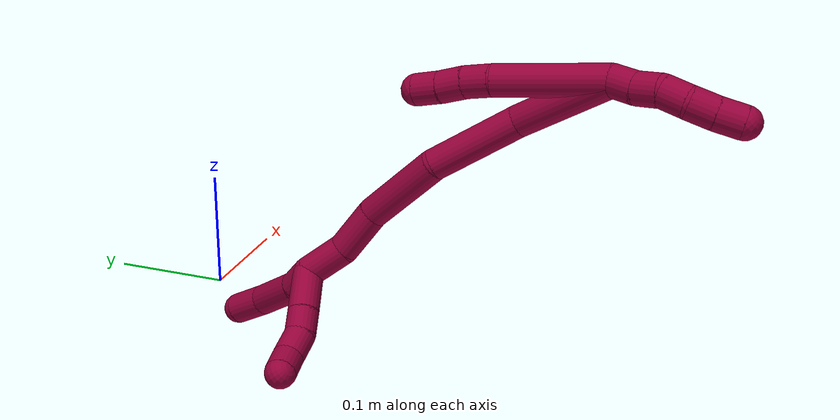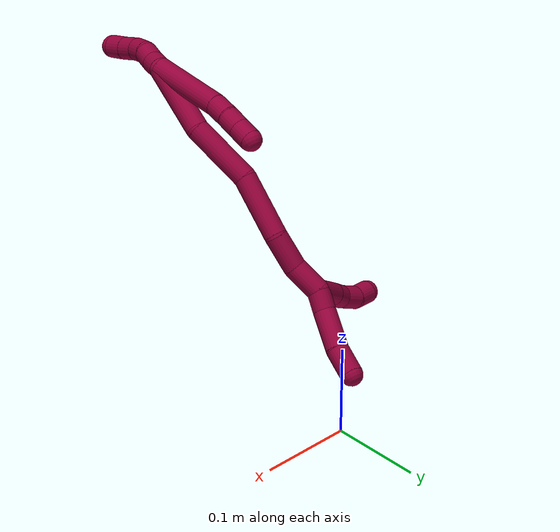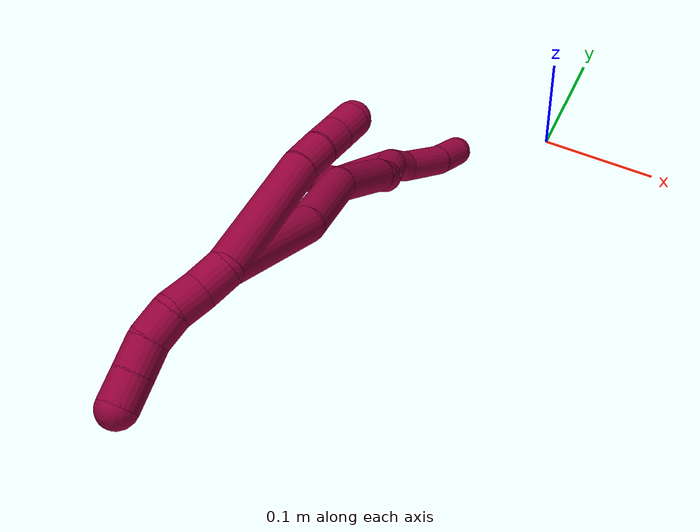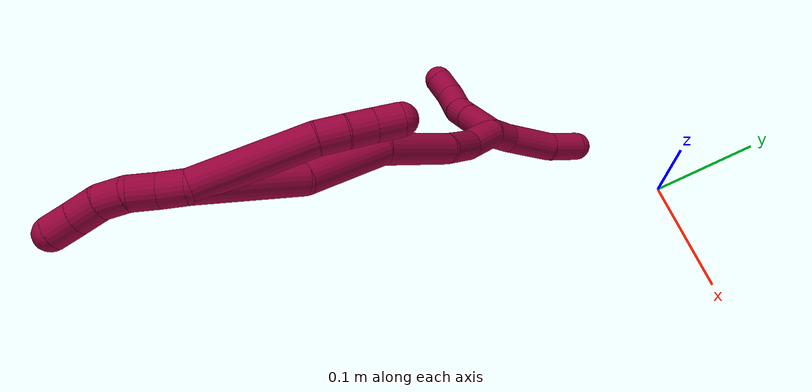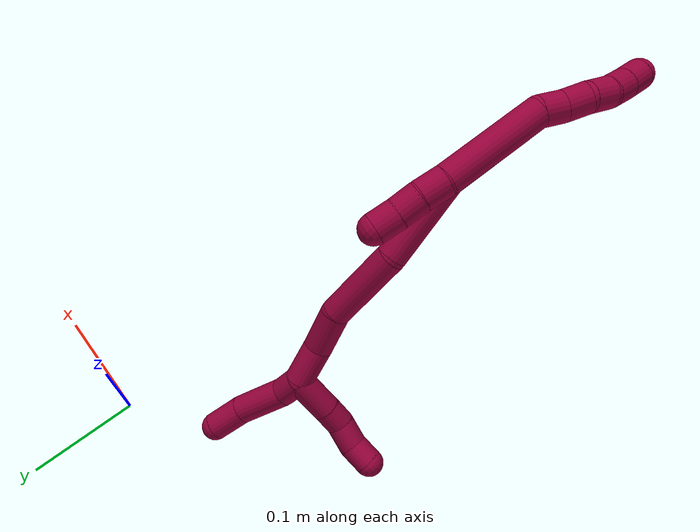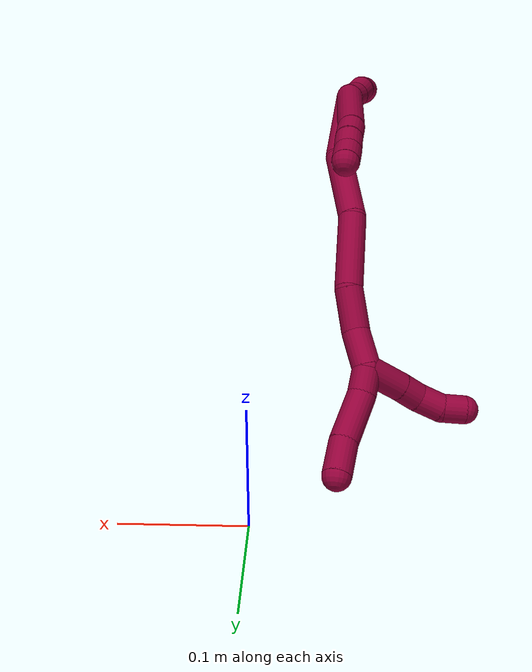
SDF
<sdf version="1.7">
 <world name="default">
  <model name="8">
   <static>0</static>
   <link name="8">
    <collision name="collision-cylinder-e_1_2_8">
     <pose>-0.007434 0.025243 -0.035139 -2.51863 -0.170163 0.517905</pose>
     <geometry><cylinder><radius>0.0125</radius><length>0.087801</length></cylinder></geometry>
     <surface>
      <friction><ode><mu>1.16</mu><mu2>1.16</mu2><slip1>0</slip1><slip2>0</slip2></ode></friction>
      <contact><ode><kp>1e+06</kp><kd>1</kd><max_vel>0</max_vel><min_depth>0.001</min_depth></ode></contact>
     </surface>
    </collision>
    <visual name="visual-cylinder-e_1_2_8">
     <pose>-0.007434 0.025243 -0.035139 -2.51863 -0.170163 0.517905</pose>
     <geometry><cylinder><radius>0.0125</radius><length>0.087801</length></cylinder></geometry>
     <material><ambient>0.584314 0 0.227451 1</ambient></material>
    </visual>
    <collision name="collision-cylinder-e_2_8_9">
     <pose>-0.015483 0.05597 -0.079528 -2.60653 -0.057079 0.207547</pose>
     <geometry><cylinder><radius>0.0125</radius><length>0.021541</length></cylinder></geometry>
     <surface>
      <friction><ode><mu>1.16</mu><mu2>1.16</mu2><slip1>0</slip1><slip2>0</slip2></ode></friction>
      <contact><ode><kp>1e+06</kp><kd>1</kd><max_vel>0</max_vel><min_depth>0.001</min_depth></ode></contact>
     </surface>
    </collision>
    <visual name="visual-cylinder-e_2_8_9">
     <pose>-0.015483 0.05597 -0.079528 -2.60653 -0.057079 0.207547</pose>
     <geometry><cylinder><radius>0.0125</radius><length>0.021541</length></cylinder></geometry>
     <material><ambient>0.584314 0 0.227451 1</ambient></material>
    </visual>
    <collision name="collision-cylinder-e_3_9_10">
     <pose>-0.017042 0.065572 -0.098036 -2.72296 -0.092978 0.431197</pose>
     <geometry><cylinder><radius>0.0125</radius><length>0.020354</length></cylinder></geometry>
     <surface>
      <friction><ode><mu>1.16</mu><mu2>1.16</mu2><slip1>0</slip1><slip2>0</slip2></ode></friction>
      <contact><ode><kp>1e+06</kp><kd>1</kd><max_vel>0</max_vel><min_depth>0.001</min_depth></ode></contact>
     </surface>
    </collision>
    <visual name="visual-cylinder-e_3_9_10">
     <pose>-0.017042 0.065572 -0.098036 -2.72296 -0.092978 0.431197</pose>
     <geometry><cylinder><radius>0.0125</radius><length>0.020354</length></cylinder></geometry>
     <material><ambient>0.584314 0 0.227451 1</ambient></material>
    </visual>
    <collision name="collision-cylinder-e_4_10_6">
     <pose>-0.018538 0.074506 -0.116214 -2.64666 -0.054287 0.214107</pose>
     <geometry><cylinder><radius>0.0125</radius><length>0.020305</length></cylinder></geometry>
     <surface>
      <friction><ode><mu>1.16</mu><mu2>1.16</mu2><slip1>0</slip1><slip2>0</slip2></ode></friction>
      <contact><ode><kp>1e+06</kp><kd>1</kd><max_vel>0</max_vel><min_depth>0.001</min_depth></ode></contact>
     </surface>
    </collision>
    <visual name="visual-cylinder-e_4_10_6">
     <pose>-0.018538 0.074506 -0.116214 -2.64666 -0.054287 0.214107</pose>
     <geometry><cylinder><radius>0.0125</radius><length>0.020305</length></cylinder></geometry>
     <material><ambient>0.584314 0 0.227451 1</ambient></material>
    </visual>
    <collision name="collision-cylinder-e_1_2_11">
     <pose>-0.001581 -0.007332 0.006614 0.836874 -0.158742 -0.070712</pose>
     <geometry><cylinder><radius>0.0125</radius><length>0.02</length></cylinder></geometry>
     <surface>
      <friction><ode><mu>1.16</mu><mu2>1.16</mu2><slip1>0</slip1><slip2>0</slip2></ode></friction>
      <contact><ode><kp>1e+06</kp><kd>1</kd><max_vel>0</max_vel><min_depth>0.001</min_depth></ode></contact>
     </surface>
    </collision>
    <visual name="visual-cylinder-e_1_2_11">
     <pose>-0.001581 -0.007332 0.006614 0.836874 -0.158742 -0.070712</pose>
     <geometry><cylinder><radius>0.0125</radius><length>0.02</length></cylinder></geometry>
     <material><ambient>0.584314 0 0.227451 1</ambient></material>
    </visual>
    <collision name="collision-cylinder-e_2_11_12">
     <pose>-0.004481 -0.02061 0.021159 0.643211 -0.132332 -0.044146</pose>
     <geometry><cylinder><radius>0.0125</radius><length>0.02</length></cylinder></geometry>
     <surface>
      <friction><ode><mu>1.16</mu><mu2>1.16</mu2><slip1>0</slip1><slip2>0</slip2></ode></friction>
      <contact><ode><kp>1e+06</kp><kd>1</kd><max_vel>0</max_vel><min_depth>0.001</min_depth></ode></contact>
     </surface>
    </collision>
    <visual name="visual-cylinder-e_2_11_12">
     <pose>-0.004481 -0.02061 0.021159 0.643211 -0.132332 -0.044146</pose>
     <geometry><cylinder><radius>0.0125</radius><length>0.02</length></cylinder></geometry>
     <material><ambient>0.584314 0 0.227451 1</ambient></material>
    </visual>
    <collision name="collision-cylinder-e_3_12_13">
     <pose>-0.00618 -0.034833 0.034687 0.976358 -0.037996 -0.02018</pose>
     <geometry><cylinder><radius>0.0125</radius><length>0.02</length></cylinder></geometry>
     <surface>
      <friction><ode><mu>1.16</mu><mu2>1.16</mu2><slip1>0</slip1><slip2>0</slip2></ode></friction>
      <contact><ode><kp>1e+06</kp><kd>1</kd><max_vel>0</max_vel><min_depth>0.001</min_depth></ode></contact>
     </surface>
    </collision>
    <visual name="visual-cylinder-e_3_12_13">
     <pose>-0.00618 -0.034833 0.034687 0.976358 -0.037996 -0.02018</pose>
     <geometry><cylinder><radius>0.0125</radius><length>0.02</length></cylinder></geometry>
     <material><ambient>0.584314 0 0.227451 1</ambient></material>
    </visual>
    <collision name="collision-cylinder-e_4_13_14">
     <pose>-0.004471 -0.051557 0.045215 1.04223 0.210501 0.121137</pose>
     <geometry><cylinder><radius>0.0125</radius><length>0.02</length></cylinder></geometry>
     <surface>
      <friction><ode><mu>1.16</mu><mu2>1.16</mu2><slip1>0</slip1><slip2>0</slip2></ode></friction>
      <contact><ode><kp>1e+06</kp><kd>1</kd><max_vel>0</max_vel><min_depth>0.001</min_depth></ode></contact>
     </surface>
    </collision>
    <visual name="visual-cylinder-e_4_13_14">
     <pose>-0.004471 -0.051557 0.045215 1.04223 0.210501 0.121137</pose>
     <geometry><cylinder><radius>0.0125</radius><length>0.02</length></cylinder></geometry>
     <material><ambient>0.584314 0 0.227451 1</ambient></material>
    </visual>
    <collision name="collision-cylinder-e_5_14_5">
     <pose>-2.8e-05 -0.068053 0.055591 0.976256 0.237544 0.12656</pose>
     <geometry><cylinder><radius>0.0125</radius><length>0.02</length></cylinder></geometry>
     <surface>
      <friction><ode><mu>1.16</mu><mu2>1.16</mu2><slip1>0</slip1><slip2>0</slip2></ode></friction>
      <contact><ode><kp>1e+06</kp><kd>1</kd><max_vel>0</max_vel><min_depth>0.001</min_depth></ode></contact>
     </surface>
    </collision>
    <visual name="visual-cylinder-e_5_14_5">
     <pose>-2.8e-05 -0.068053 0.055591 0.976256 0.237544 0.12656</pose>
     <geometry><cylinder><radius>0.0125</radius><length>0.02</length></cylinder></geometry>
     <material><ambient>0.584314 0 0.227451 1</ambient></material>
    </visual>
    <collision name="collision-cylinder-e_1_2_15">
     <pose>-0.000126 0.008098 -0.040116 -2.94242 -0.003074 0.030765</pose>
     <geometry><cylinder><radius>0.0125</radius><length>0.081851</length></cylinder></geometry>
     <surface>
      <friction><ode><mu>1.16</mu><mu2>1.16</mu2><slip1>0</slip1><slip2>0</slip2></ode></friction>
      <contact><ode><kp>1e+06</kp><kd>1</kd><max_vel>0</max_vel><min_depth>0.001</min_depth></ode></contact>
     </surface>
    </collision>
    <visual name="visual-cylinder-e_1_2_15">
     <pose>-0.000126 0.008098 -0.040116 -2.94242 -0.003074 0.030765</pose>
     <geometry><cylinder><radius>0.0125</radius><length>0.081851</length></cylinder></geometry>
     <material><ambient>0.584314 0 0.227451 1</ambient></material>
    </visual>
    <collision name="collision-cylinder-e_2_15_16">
     <pose>-0.010698 0.021321 -0.114954 -2.99504 -0.289295 2.20798</pose>
     <geometry><cylinder><radius>0.0125</radius><length>0.07324</length></cylinder></geometry>
     <surface>
      <friction><ode><mu>1.16</mu><mu2>1.16</mu2><slip1>0</slip1><slip2>0</slip2></ode></friction>
      <contact><ode><kp>1e+06</kp><kd>1</kd><max_vel>0</max_vel><min_depth>0.001</min_depth></ode></contact>
     </surface>
    </collision>
    <visual name="visual-cylinder-e_2_15_16">
     <pose>-0.010698 0.021321 -0.114954 -2.99504 -0.289295 2.20798</pose>
     <geometry><cylinder><radius>0.0125</radius><length>0.07324</length></cylinder></geometry>
     <material><ambient>0.584314 0 0.227451 1</ambient></material>
    </visual>
    <collision name="collision-cylinder-e_3_16_17">
     <pose>-0.023064 0.0255 -0.184658 3.11455 -0.054781 -2.2246</pose>
     <geometry><cylinder><radius>0.0125</radius><length>0.070094</length></cylinder></geometry>
     <surface>
      <friction><ode><mu>1.16</mu><mu2>1.16</mu2><slip1>0</slip1><slip2>0</slip2></ode></friction>
      <contact><ode><kp>1e+06</kp><kd>1</kd><max_vel>0</max_vel><min_depth>0.001</min_depth></ode></contact>
     </surface>
    </collision>
    <visual name="visual-cylinder-e_3_16_17">
     <pose>-0.023064 0.0255 -0.184658 3.11455 -0.054781 -2.2246</pose>
     <geometry><cylinder><radius>0.0125</radius><length>0.070094</length></cylinder></geometry>
     <material><ambient>0.584314 0 0.227451 1</ambient></material>
    </visual>
    <collision name="collision-cylinder-e_4_17_18">
     <pose>-0.029473 0.019811 -0.238227 2.89177 -0.229901 -1.48699</pose>
     <geometry><cylinder><radius>0.0125</radius><length>0.039403</length></cylinder></geometry>
     <surface>
      <friction><ode><mu>1.16</mu><mu2>1.16</mu2><slip1>0</slip1><slip2>0</slip2></ode></friction>
      <contact><ode><kp>1e+06</kp><kd>1</kd><max_vel>0</max_vel><min_depth>0.001</min_depth></ode></contact>
     </surface>
    </collision>
    <visual name="visual-cylinder-e_4_17_18">
     <pose>-0.029473 0.019811 -0.238227 2.89177 -0.229901 -1.48699</pose>
     <geometry><cylinder><radius>0.0125</radius><length>0.039403</length></cylinder></geometry>
     <material><ambient>0.584314 0 0.227451 1</ambient></material>
    </visual>
    <collision name="collision-cylinder-e_5_18_1">
     <pose>-0.040265 0.015604 -0.273353 -3.10917 -0.363912 2.96583</pose>
     <geometry><cylinder><radius>0.0125</radius><length>0.035412</length></cylinder></geometry>
     <surface>
      <friction><ode><mu>1.16</mu><mu2>1.16</mu2><slip1>0</slip1><slip2>0</slip2></ode></friction>
      <contact><ode><kp>1e+06</kp><kd>1</kd><max_vel>0</max_vel><min_depth>0.001</min_depth></ode></contact>
     </surface>
    </collision>
    <visual name="visual-cylinder-e_5_18_1">
     <pose>-0.040265 0.015604 -0.273353 -3.10917 -0.363912 2.96583</pose>
     <geometry><cylinder><radius>0.0125</radius><length>0.035412</length></cylinder></geometry>
     <material><ambient>0.584314 0 0.227451 1</ambient></material>
    </visual>
    <collision name="collision-cylinder-e_1_1_19">
     <pose>-0.04536 0.014709 -0.301069 3.01425 0.106648 1.39399</pose>
     <geometry><cylinder><radius>0.0125</radius><length>0.022668</length></cylinder></geometry>
     <surface>
      <friction><ode><mu>1.16</mu><mu2>1.16</mu2><slip1>0</slip1><slip2>0</slip2></ode></friction>
      <contact><ode><kp>1e+06</kp><kd>1</kd><max_vel>0</max_vel><min_depth>0.001</min_depth></ode></contact>
     </surface>
    </collision>
    <visual name="visual-cylinder-e_1_1_19">
     <pose>-0.04536 0.014709 -0.301069 3.01425 0.106648 1.39399</pose>
     <geometry><cylinder><radius>0.0125</radius><length>0.022668</length></cylinder></geometry>
     <material><ambient>0.584314 0 0.227451 1</ambient></material>
    </visual>
    <collision name="collision-cylinder-e_2_19_20">
     <pose>-0.039245 0.016887 -0.334475 -2.98065 0.214628 -1.8564</pose>
     <geometry><cylinder><radius>0.0125</radius><length>0.046093</length></cylinder></geometry>
     <surface>
      <friction><ode><mu>1.16</mu><mu2>1.16</mu2><slip1>0</slip1><slip2>0</slip2></ode></friction>
      <contact><ode><kp>1e+06</kp><kd>1</kd><max_vel>0</max_vel><min_depth>0.001</min_depth></ode></contact>
     </surface>
    </collision>
    <visual name="visual-cylinder-e_2_19_20">
     <pose>-0.039245 0.016887 -0.334475 -2.98065 0.214628 -1.8564</pose>
     <geometry><cylinder><radius>0.0125</radius><length>0.046093</length></cylinder></geometry>
     <material><ambient>0.584314 0 0.227451 1</ambient></material>
    </visual>
    <collision name="collision-cylinder-e_3_20_4">
     <pose>-0.03365 0.023989 -0.371909 -2.91573 0.044008 -0.383328</pose>
     <geometry><cylinder><radius>0.0125</radius><length>0.031238</length></cylinder></geometry>
     <surface>
      <friction><ode><mu>1.16</mu><mu2>1.16</mu2><slip1>0</slip1><slip2>0</slip2></ode></friction>
      <contact><ode><kp>1e+06</kp><kd>1</kd><max_vel>0</max_vel><min_depth>0.001</min_depth></ode></contact>
     </surface>
    </collision>
    <visual name="visual-cylinder-e_3_20_4">
     <pose>-0.03365 0.023989 -0.371909 -2.91573 0.044008 -0.383328</pose>
     <geometry><cylinder><radius>0.0125</radius><length>0.031238</length></cylinder></geometry>
     <material><ambient>0.584314 0 0.227451 1</ambient></material>
    </visual>
    <collision name="collision-cylinder-e_1_1_21">
     <pose>-0.059834 0.003929 -0.292435 1.77626 -0.816202 -0.977482</pose>
     <geometry><cylinder><radius>0.0125</radius><length>0.036421</length></cylinder></geometry>
     <surface>
      <friction><ode><mu>1.16</mu><mu2>1.16</mu2><slip1>0</slip1><slip2>0</slip2></ode></friction>
      <contact><ode><kp>1e+06</kp><kd>1</kd><max_vel>0</max_vel><min_depth>0.001</min_depth></ode></contact>
     </surface>
    </collision>
    <visual name="visual-cylinder-e_1_1_21">
     <pose>-0.059834 0.003929 -0.292435 1.77626 -0.816202 -0.977482</pose>
     <geometry><cylinder><radius>0.0125</radius><length>0.036421</length></cylinder></geometry>
     <material><ambient>0.584314 0 0.227451 1</ambient></material>
    </visual>
    <collision name="collision-cylinder-e_2_21_22">
     <pose>-0.080245 -0.01507 -0.296854 1.84009 -0.792636 -1.00507</pose>
     <geometry><cylinder><radius>0.0125</radius><length>0.020061</length></cylinder></geometry>
     <surface>
      <friction><ode><mu>1.16</mu><mu2>1.16</mu2><slip1>0</slip1><slip2>0</slip2></ode></friction>
      <contact><ode><kp>1e+06</kp><kd>1</kd><max_vel>0</max_vel><min_depth>0.001</min_depth></ode></contact>
     </surface>
    </collision>
    <visual name="visual-cylinder-e_2_21_22">
     <pose>-0.080245 -0.01507 -0.296854 1.84009 -0.792636 -1.00507</pose>
     <geometry><cylinder><radius>0.0125</radius><length>0.020061</length></cylinder></geometry>
     <material><ambient>0.584314 0 0.227451 1</ambient></material>
    </visual>
    <collision name="collision-cylinder-e_3_22_23">
     <pose>-0.097551 -0.026483 -0.301368 2.08966 -1.08804 -1.61195</pose>
     <geometry><cylinder><radius>0.0125</radius><length>0.022946</length></cylinder></geometry>
     <surface>
      <friction><ode><mu>1.16</mu><mu2>1.16</mu2><slip1>0</slip1><slip2>0</slip2></ode></friction>
      <contact><ode><kp>1e+06</kp><kd>1</kd><max_vel>0</max_vel><min_depth>0.001</min_depth></ode></contact>
     </surface>
    </collision>
    <visual name="visual-cylinder-e_3_22_23">
     <pose>-0.097551 -0.026483 -0.301368 2.08966 -1.08804 -1.61195</pose>
     <geometry><cylinder><radius>0.0125</radius><length>0.022946</length></cylinder></geometry>
     <material><ambient>0.584314 0 0.227451 1</ambient></material>
    </visual>
    <collision name="collision-cylinder-e_4_23_3">
     <pose>-0.117379 -0.034466 -0.302966 1.26962 -1.22187 -0.952397</pose>
     <geometry><cylinder><radius>0.0125</radius><length>0.020572</length></cylinder></geometry>
     <surface>
      <friction><ode><mu>1.16</mu><mu2>1.16</mu2><slip1>0</slip1><slip2>0</slip2></ode></friction>
      <contact><ode><kp>1e+06</kp><kd>1</kd><max_vel>0</max_vel><min_depth>0.001</min_depth></ode></contact>
     </surface>
    </collision>
    <visual name="visual-cylinder-e_4_23_3">
     <pose>-0.117379 -0.034466 -0.302966 1.26962 -1.22187 -0.952397</pose>
     <geometry><cylinder><radius>0.0125</radius><length>0.020572</length></cylinder></geometry>
     <material><ambient>0.584314 0 0.227451 1</ambient></material>
    </visual>
    <collision name="collision-sphere-3">
     <pose>-0.127045 -0.037824 -0.301923 0 -0 0</pose>
     <geometry><sphere><radius>0.0125</radius></sphere></geometry>
     <surface>
      <friction><ode><mu>1.16</mu><mu2>1.16</mu2><slip1>0</slip1><slip2>0</slip2></ode></friction>
      <contact><ode><kp>1e+06</kp><kd>1</kd><max_vel>0</max_vel><min_depth>0.001</min_depth></ode></contact>
     </surface>
    </collision>
    <visual name="visual-sphere-3">
     <pose>-0.127045 -0.037824 -0.301923 0 -0 0</pose>
     <geometry><sphere><radius>0.0125</radius></sphere></geometry>
     <material><ambient>0.584314 0 0.227451 1</ambient></material>
    </visual>
    <collision name="collision-sphere-23">
     <pose>-0.107713 -0.031108 -0.304009 0 -0 0</pose>
     <geometry><sphere><radius>0.0125</radius></sphere></geometry>
     <surface>
      <friction><ode><mu>1.16</mu><mu2>1.16</mu2><slip1>0</slip1><slip2>0</slip2></ode></friction>
      <contact><ode><kp>1e+06</kp><kd>1</kd><max_vel>0</max_vel><min_depth>0.001</min_depth></ode></contact>
     </surface>
    </collision>
    <visual name="visual-sphere-23">
     <pose>-0.107713 -0.031108 -0.304009 0 -0 0</pose>
     <geometry><sphere><radius>0.0125</radius></sphere></geometry>
     <material><ambient>0.584314 0 0.227451 1</ambient></material>
    </visual>
    <collision name="collision-sphere-22">
     <pose>-0.087389 -0.021857 -0.298727 0 -0 0</pose>
     <geometry><sphere><radius>0.0125</radius></sphere></geometry>
     <surface>
      <friction><ode><mu>1.16</mu><mu2>1.16</mu2><slip1>0</slip1><slip2>0</slip2></ode></friction>
      <contact><ode><kp>1e+06</kp><kd>1</kd><max_vel>0</max_vel><min_depth>0.001</min_depth></ode></contact>
     </surface>
    </collision>
    <visual name="visual-sphere-22">
     <pose>-0.087389 -0.021857 -0.298727 0 -0 0</pose>
     <geometry><sphere><radius>0.0125</radius></sphere></geometry>
     <material><ambient>0.584314 0 0.227451 1</ambient></material>
    </visual>
    <collision name="collision-sphere-21">
     <pose>-0.073101 -0.008283 -0.29498 0 -0 0</pose>
     <geometry><sphere><radius>0.0125</radius></sphere></geometry>
     <surface>
      <friction><ode><mu>1.16</mu><mu2>1.16</mu2><slip1>0</slip1><slip2>0</slip2></ode></friction>
      <contact><ode><kp>1e+06</kp><kd>1</kd><max_vel>0</max_vel><min_depth>0.001</min_depth></ode></contact>
     </surface>
    </collision>
    <visual name="visual-sphere-21">
     <pose>-0.073101 -0.008283 -0.29498 0 -0 0</pose>
     <geometry><sphere><radius>0.0125</radius></sphere></geometry>
     <material><ambient>0.584314 0 0.227451 1</ambient></material>
    </visual>
    <collision name="collision-sphere-4">
     <pose>-0.032962 0.027484 -0.387117 0 -0 0</pose>
     <geometry><sphere><radius>0.0125</radius></sphere></geometry>
     <surface>
      <friction><ode><mu>1.16</mu><mu2>1.16</mu2><slip1>0</slip1><slip2>0</slip2></ode></friction>
      <contact><ode><kp>1e+06</kp><kd>1</kd><max_vel>0</max_vel><min_depth>0.001</min_depth></ode></contact>
     </surface>
    </collision>
    <visual name="visual-sphere-4">
     <pose>-0.032962 0.027484 -0.387117 0 -0 0</pose>
     <geometry><sphere><radius>0.0125</radius></sphere></geometry>
     <material><ambient>0.584314 0 0.227451 1</ambient></material>
    </visual>
    <collision name="collision-sphere-20">
     <pose>-0.034337 0.020495 -0.356702 0 -0 0</pose>
     <geometry><sphere><radius>0.0125</radius></sphere></geometry>
     <surface>
      <friction><ode><mu>1.16</mu><mu2>1.16</mu2><slip1>0</slip1><slip2>0</slip2></ode></friction>
      <contact><ode><kp>1e+06</kp><kd>1</kd><max_vel>0</max_vel><min_depth>0.001</min_depth></ode></contact>
     </surface>
    </collision>
    <visual name="visual-sphere-20">
     <pose>-0.034337 0.020495 -0.356702 0 -0 0</pose>
     <geometry><sphere><radius>0.0125</radius></sphere></geometry>
     <material><ambient>0.584314 0 0.227451 1</ambient></material>
    </visual>
    <collision name="collision-sphere-11">
     <pose>-0.003162 -0.014664 0.013227 0 -0 0</pose>
     <geometry><sphere><radius>0.0125</radius></sphere></geometry>
     <surface>
      <friction><ode><mu>1.16</mu><mu2>1.16</mu2><slip1>0</slip1><slip2>0</slip2></ode></friction>
      <contact><ode><kp>1e+06</kp><kd>1</kd><max_vel>0</max_vel><min_depth>0.001</min_depth></ode></contact>
     </surface>
    </collision>
    <visual name="visual-sphere-11">
     <pose>-0.003162 -0.014664 0.013227 0 -0 0</pose>
     <geometry><sphere><radius>0.0125</radius></sphere></geometry>
     <material><ambient>0.584314 0 0.227451 1</ambient></material>
    </visual>
    <collision name="collision-sphere-6">
     <pose>-0.019089 0.079321 -0.125135 0 -0 0</pose>
     <geometry><sphere><radius>0.0125</radius></sphere></geometry>
     <surface>
      <friction><ode><mu>1.16</mu><mu2>1.16</mu2><slip1>0</slip1><slip2>0</slip2></ode></friction>
      <contact><ode><kp>1e+06</kp><kd>1</kd><max_vel>0</max_vel><min_depth>0.001</min_depth></ode></contact>
     </surface>
    </collision>
    <visual name="visual-sphere-6">
     <pose>-0.019089 0.079321 -0.125135 0 -0 0</pose>
     <geometry><sphere><radius>0.0125</radius></sphere></geometry>
     <material><ambient>0.584314 0 0.227451 1</ambient></material>
    </visual>
    <collision name="collision-sphere-10">
     <pose>-0.017987 0.069691 -0.107294 0 -0 0</pose>
     <geometry><sphere><radius>0.0125</radius></sphere></geometry>
     <surface>
      <friction><ode><mu>1.16</mu><mu2>1.16</mu2><slip1>0</slip1><slip2>0</slip2></ode></friction>
      <contact><ode><kp>1e+06</kp><kd>1</kd><max_vel>0</max_vel><min_depth>0.001</min_depth></ode></contact>
     </surface>
    </collision>
    <visual name="visual-sphere-10">
     <pose>-0.017987 0.069691 -0.107294 0 -0 0</pose>
     <geometry><sphere><radius>0.0125</radius></sphere></geometry>
     <material><ambient>0.584314 0 0.227451 1</ambient></material>
    </visual>
    <collision name="collision-sphere-9">
     <pose>-0.016097 0.061453 -0.088778 0 -0 0</pose>
     <geometry><sphere><radius>0.0125</radius></sphere></geometry>
     <surface>
      <friction><ode><mu>1.16</mu><mu2>1.16</mu2><slip1>0</slip1><slip2>0</slip2></ode></friction>
      <contact><ode><kp>1e+06</kp><kd>1</kd><max_vel>0</max_vel><min_depth>0.001</min_depth></ode></contact>
     </surface>
    </collision>
    <visual name="visual-sphere-9">
     <pose>-0.016097 0.061453 -0.088778 0 -0 0</pose>
     <geometry><sphere><radius>0.0125</radius></sphere></geometry>
     <material><ambient>0.584314 0 0.227451 1</ambient></material>
    </visual>
    <collision name="collision-sphere-2">
     <geometry><sphere><radius>0.0125</radius></sphere></geometry>
     <surface>
      <friction><ode><mu>1.16</mu><mu2>1.16</mu2><slip1>0</slip1><slip2>0</slip2></ode></friction>
      <contact><ode><kp>1e+06</kp><kd>1</kd><max_vel>0</max_vel><min_depth>0.001</min_depth></ode></contact>
     </surface>
    </collision>
    <visual name="visual-sphere-2">
     <geometry><sphere><radius>0.0125</radius></sphere></geometry>
     <material><ambient>0.584314 0 0.227451 1</ambient></material>
    </visual>
    <collision name="collision-sphere-19">
     <pose>-0.044154 0.013278 -0.312248 0 -0 0</pose>
     <geometry><sphere><radius>0.0125</radius></sphere></geometry>
     <surface>
      <friction><ode><mu>1.16</mu><mu2>1.16</mu2><slip1>0</slip1><slip2>0</slip2></ode></friction>
      <contact><ode><kp>1e+06</kp><kd>1</kd><max_vel>0</max_vel><min_depth>0.001</min_depth></ode></contact>
     </surface>
    </collision>
    <visual name="visual-sphere-19">
     <pose>-0.044154 0.013278 -0.312248 0 -0 0</pose>
     <geometry><sphere><radius>0.0125</radius></sphere></geometry>
     <material><ambient>0.584314 0 0.227451 1</ambient></material>
    </visual>
    <collision name="collision-sphere-8">
     <pose>-0.014868 0.050487 -0.070278 0 -0 0</pose>
     <geometry><sphere><radius>0.0125</radius></sphere></geometry>
     <surface>
      <friction><ode><mu>1.16</mu><mu2>1.16</mu2><slip1>0</slip1><slip2>0</slip2></ode></friction>
      <contact><ode><kp>1e+06</kp><kd>1</kd><max_vel>0</max_vel><min_depth>0.001</min_depth></ode></contact>
     </surface>
    </collision>
    <visual name="visual-sphere-8">
     <pose>-0.014868 0.050487 -0.070278 0 -0 0</pose>
     <geometry><sphere><radius>0.0125</radius></sphere></geometry>
     <material><ambient>0.584314 0 0.227451 1</ambient></material>
    </visual>
    <collision name="collision-sphere-12">
     <pose>-0.0058 -0.026555 0.029091 0 -0 0</pose>
     <geometry><sphere><radius>0.0125</radius></sphere></geometry>
     <surface>
      <friction><ode><mu>1.16</mu><mu2>1.16</mu2><slip1>0</slip1><slip2>0</slip2></ode></friction>
      <contact><ode><kp>1e+06</kp><kd>1</kd><max_vel>0</max_vel><min_depth>0.001</min_depth></ode></contact>
     </surface>
    </collision>
    <visual name="visual-sphere-12">
     <pose>-0.0058 -0.026555 0.029091 0 -0 0</pose>
     <geometry><sphere><radius>0.0125</radius></sphere></geometry>
     <material><ambient>0.584314 0 0.227451 1</ambient></material>
    </visual>
    <collision name="collision-sphere-13">
     <pose>-0.00656 -0.043112 0.040284 0 -0 0</pose>
     <geometry><sphere><radius>0.0125</radius></sphere></geometry>
     <surface>
      <friction><ode><mu>1.16</mu><mu2>1.16</mu2><slip1>0</slip1><slip2>0</slip2></ode></friction>
      <contact><ode><kp>1e+06</kp><kd>1</kd><max_vel>0</max_vel><min_depth>0.001</min_depth></ode></contact>
     </surface>
    </collision>
    <visual name="visual-sphere-13">
     <pose>-0.00656 -0.043112 0.040284 0 -0 0</pose>
     <geometry><sphere><radius>0.0125</radius></sphere></geometry>
     <material><ambient>0.584314 0 0.227451 1</ambient></material>
    </visual>
    <collision name="collision-sphere-14">
     <pose>-0.002381 -0.060002 0.050147 0 -0 0</pose>
     <geometry><sphere><radius>0.0125</radius></sphere></geometry>
     <surface>
      <friction><ode><mu>1.16</mu><mu2>1.16</mu2><slip1>0</slip1><slip2>0</slip2></ode></friction>
      <contact><ode><kp>1e+06</kp><kd>1</kd><max_vel>0</max_vel><min_depth>0.001</min_depth></ode></contact>
     </surface>
    </collision>
    <visual name="visual-sphere-14">
     <pose>-0.002381 -0.060002 0.050147 0 -0 0</pose>
     <geometry><sphere><radius>0.0125</radius></sphere></geometry>
     <material><ambient>0.584314 0 0.227451 1</ambient></material>
    </visual>
    <collision name="collision-sphere-5">
     <pose>0.002325 -0.076104 0.061035 0 -0 0</pose>
     <geometry><sphere><radius>0.0125</radius></sphere></geometry>
     <surface>
      <friction><ode><mu>1.16</mu><mu2>1.16</mu2><slip1>0</slip1><slip2>0</slip2></ode></friction>
      <contact><ode><kp>1e+06</kp><kd>1</kd><max_vel>0</max_vel><min_depth>0.001</min_depth></ode></contact>
     </surface>
    </collision>
    <visual name="visual-sphere-5">
     <pose>0.002325 -0.076104 0.061035 0 -0 0</pose>
     <geometry><sphere><radius>0.0125</radius></sphere></geometry>
     <material><ambient>0.584314 0 0.227451 1</ambient></material>
    </visual>
    <collision name="collision-sphere-15">
     <pose>-0.000252 0.016195 -0.080232 0 -0 0</pose>
     <geometry><sphere><radius>0.0125</radius></sphere></geometry>
     <surface>
      <friction><ode><mu>1.16</mu><mu2>1.16</mu2><slip1>0</slip1><slip2>0</slip2></ode></friction>
      <contact><ode><kp>1e+06</kp><kd>1</kd><max_vel>0</max_vel><min_depth>0.001</min_depth></ode></contact>
     </surface>
    </collision>
    <visual name="visual-sphere-15">
     <pose>-0.000252 0.016195 -0.080232 0 -0 0</pose>
     <geometry><sphere><radius>0.0125</radius></sphere></geometry>
     <material><ambient>0.584314 0 0.227451 1</ambient></material>
    </visual>
    <collision name="collision-sphere-16">
     <pose>-0.021145 0.026446 -0.149676 0 -0 0</pose>
     <geometry><sphere><radius>0.0125</radius></sphere></geometry>
     <surface>
      <friction><ode><mu>1.16</mu><mu2>1.16</mu2><slip1>0</slip1><slip2>0</slip2></ode></friction>
      <contact><ode><kp>1e+06</kp><kd>1</kd><max_vel>0</max_vel><min_depth>0.001</min_depth></ode></contact>
     </surface>
    </collision>
    <visual name="visual-sphere-16">
     <pose>-0.021145 0.026446 -0.149676 0 -0 0</pose>
     <geometry><sphere><radius>0.0125</radius></sphere></geometry>
     <material><ambient>0.584314 0 0.227451 1</ambient></material>
    </visual>
    <collision name="collision-sphere-17">
     <pose>-0.024983 0.024553 -0.219639 0 -0 0</pose>
     <geometry><sphere><radius>0.0125</radius></sphere></geometry>
     <surface>
      <friction><ode><mu>1.16</mu><mu2>1.16</mu2><slip1>0</slip1><slip2>0</slip2></ode></friction>
      <contact><ode><kp>1e+06</kp><kd>1</kd><max_vel>0</max_vel><min_depth>0.001</min_depth></ode></contact>
     </surface>
    </collision>
    <visual name="visual-sphere-17">
     <pose>-0.024983 0.024553 -0.219639 0 -0 0</pose>
     <geometry><sphere><radius>0.0125</radius></sphere></geometry>
     <material><ambient>0.584314 0 0.227451 1</ambient></material>
    </visual>
    <collision name="collision-sphere-18">
     <pose>-0.033963 0.015068 -0.256815 0 -0 0</pose>
     <geometry><sphere><radius>0.0125</radius></sphere></geometry>
     <surface>
      <friction><ode><mu>1.16</mu><mu2>1.16</mu2><slip1>0</slip1><slip2>0</slip2></ode></friction>
      <contact><ode><kp>1e+06</kp><kd>1</kd><max_vel>0</max_vel><min_depth>0.001</min_depth></ode></contact>
     </surface>
    </collision>
    <visual name="visual-sphere-18">
     <pose>-0.033963 0.015068 -0.256815 0 -0 0</pose>
     <geometry><sphere><radius>0.0125</radius></sphere></geometry>
     <material><ambient>0.584314 0 0.227451 1</ambient></material>
    </visual>
    <collision name="collision-sphere-1">
     <pose>-0.046567 0.016141 -0.28989 0 -0 0</pose>
     <geometry><sphere><radius>0.0125</radius></sphere></geometry>
     <surface>
      <friction><ode><mu>1.16</mu><mu2>1.16</mu2><slip1>0</slip1><slip2>0</slip2></ode></friction>
      <contact><ode><kp>1e+06</kp><kd>1</kd><max_vel>0</max_vel><min_depth>0.001</min_depth></ode></contact>
     </surface>
    </collision>
    <visual name="visual-sphere-1">
     <pose>-0.046567 0.016141 -0.28989 0 -0 0</pose>
     <geometry><sphere><radius>0.0125</radius></sphere></geometry>
     <material><ambient>0.584314 0 0.227451 1</ambient></material>
    </visual>
    <inertial>
     <pose>-0.02583 0.011136 -0.150953 0 -0 0</pose>
     <mass>0.75</mass>
     <inertia>
      <ixx>7.7e-05</ixx>
      <ixy>0</ixy>
      <ixz>0</ixz>
      <iyy>-2.2e-05</iyy>
      <iyz>0</iyz>
      <izz>-4.5e-05</izz>
     </inertia>
    </inertial>
   </link>
   <pose>-0.077384 -0.360485 0.250497 0.83398 0.038787 -0.171806</pose>
  </model>
 </world>
</sdf>
